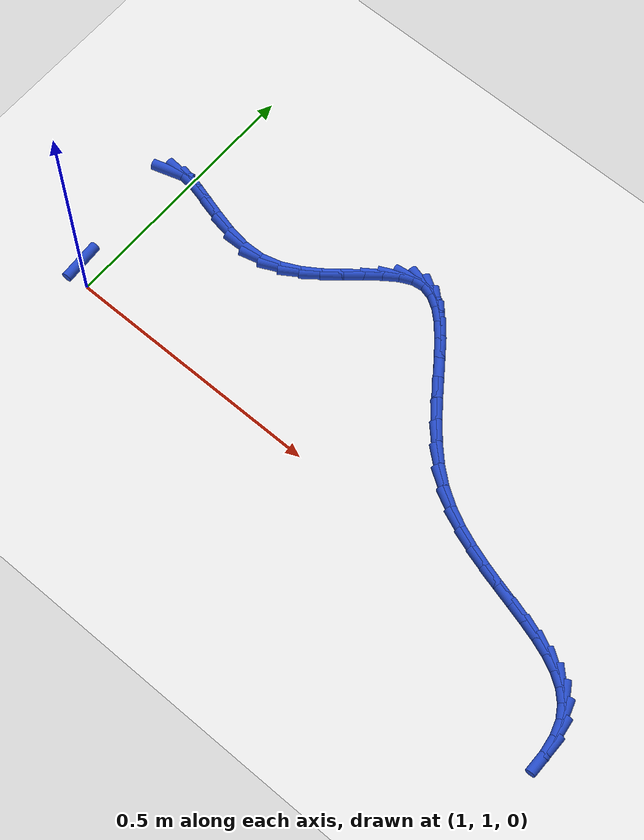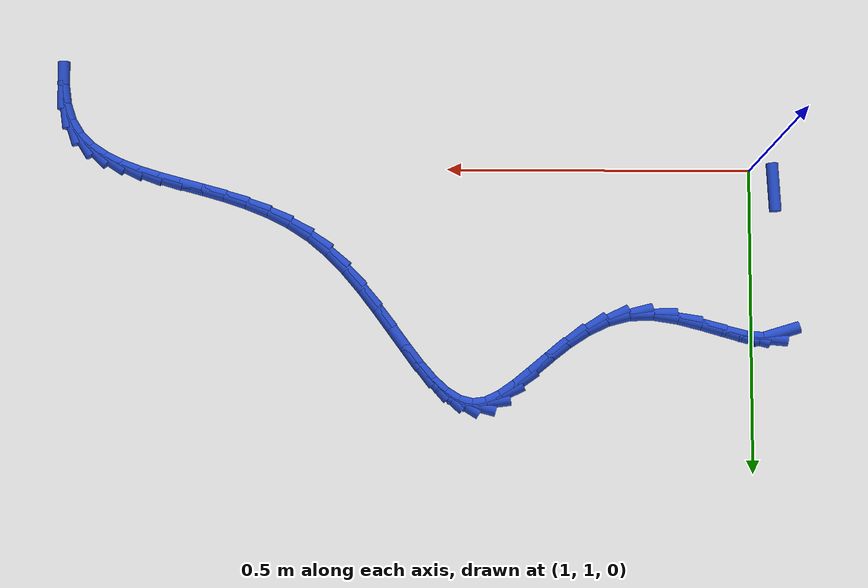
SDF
<sdf version="1.6">
 <world name="default">
  <model name="ground_plane">
   <static>1</static>
   <link name="link">
    <collision name="collision">
     <geometry><plane><normal>0 0 1</normal><size>100 100</size></plane></geometry>
     <surface><friction><ode><mu>100</mu><mu2>50</mu2></ode></friction></surface>
    </collision>
    <visual name="visual">
     <cast_shadows>0</cast_shadows>
     <geometry><plane><normal>0 0 1</normal><size>100 100</size></plane></geometry>
     <material>
      <script><uri>file://media/materials/scripts/gazebo.material</uri><name>Gazebo/WhiteGlow</name></script>
     </material>
    </visual>
   </link>
  </model>
  <model name="line">
   <link name="link_58">
    <pose>0.9605928136043744 1.027902961192226 0.01 0 1.57 -1.5136430494704942</pose>
    <collision name="collision">
     <geometry><cylinder><radius>0.01</radius><length>0.08</length></cylinder></geometry>
    </collision>
    <visual name="visual">
     <material>
      <script><name>Gazebo/Blue</name><uri>file://media/materials/scripts/gazebo.material</uri></script>
     </material>
     <geometry><cylinder><radius>0.01</radius><length>0.08</length></cylinder></geometry>
    </visual>
   </link>
   <link name="link_65">
    <pose>0.9603927671434382 1.271855143567124 0.01 0 1.57 0.2981875370096735</pose>
    <collision name="collision">
     <geometry><cylinder><radius>0.01</radius><length>0.08</length></cylinder></geometry>
    </collision>
    <visual name="visual">
     <material>
      <script><name>Gazebo/Blue</name><uri>file://media/materials/scripts/gazebo.material</uri></script>
     </material>
     <geometry><cylinder><radius>0.01</radius><length>0.08</length></cylinder></geometry>
    </visual>
   </link>
   <link name="link_66">
    <pose>0.9814231925790543 1.2783188756263189 0.01 0 1.57 -0.08738735991662325</pose>
    <collision name="collision">
     <geometry><cylinder><radius>0.01</radius><length>0.08</length></cylinder></geometry>
    </collision>
    <visual name="visual">
     <material>
      <script><name>Gazebo/Blue</name><uri>file://media/materials/scripts/gazebo.material</uri></script>
     </material>
     <geometry><cylinder><radius>0.01</radius><length>0.08</length></cylinder></geometry>
    </visual>
   </link>
   <link name="link_67">
    <pose>1.0097233587953658 1.2758394842674308 0.01 0 1.57 -0.23805824030081318</pose>
    <collision name="collision">
     <geometry><cylinder><radius>0.01</radius><length>0.08</length></cylinder></geometry>
    </collision>
    <visual name="visual">
     <material>
      <script><name>Gazebo/Blue</name><uri>file://media/materials/scripts/gazebo.material</uri></script>
     </material>
     <geometry><cylinder><radius>0.01</radius><length>0.08</length></cylinder></geometry>
    </visual>
   </link>
   <link name="link_68">
    <pose>1.0435710092084798 1.2676260258343406 0.01 0 1.57 -0.27768086560515354</pose>
    <collision name="collision">
     <geometry><cylinder><radius>0.01</radius><length>0.08</length></cylinder></geometry>
    </collision>
    <visual name="visual">
     <material>
      <script><name>Gazebo/Blue</name><uri>file://media/materials/scripts/gazebo.material</uri></script>
     </material>
     <geometry><cylinder><radius>0.01</radius><length>0.08</length></cylinder></geometry>
    </visual>
   </link>
   <link name="link_69">
    <pose>1.0812438872345045 1.2568875566709294 0.01 0 1.57 -0.24759068626663827</pose>
    <collision name="collision">
     <geometry><cylinder><radius>0.01</radius><length>0.08</length></cylinder></geometry>
    </collision>
    <visual name="visual">
     <material>
      <script><name>Gazebo/Blue</name><uri>file://media/materials/scripts/gazebo.material</uri></script>
     </material>
     <geometry><cylinder><radius>0.01</radius><length>0.08</length></cylinder></geometry>
    </visual>
   </link>
   <link name="link_70">
    <pose>1.1210197362895482 1.2468331331210767 0.01 0 1.57 -0.152245205504104</pose>
    <collision name="collision">
     <geometry><cylinder><radius>0.01</radius><length>0.08</length></cylinder></geometry>
    </collision>
    <visual name="visual">
     <material>
      <script><name>Gazebo/Blue</name><uri>file://media/materials/scripts/gazebo.material</uri></script>
     </material>
     <geometry><cylinder><radius>0.01</radius><length>0.08</length></cylinder></geometry>
    </visual>
   </link>
   <link name="link_71">
    <pose>1.1611762997897181 1.2406718115286641 0.01 0 1.57 0.023915282053574946</pose>
    <collision name="collision">
     <geometry><cylinder><radius>0.01</radius><length>0.08</length></cylinder></geometry>
    </collision>
    <visual name="visual">
     <material>
      <script><name>Gazebo/Blue</name><uri>file://media/materials/scripts/gazebo.material</uri></script>
     </material>
     <geometry><cylinder><radius>0.01</radius><length>0.08</length></cylinder></geometry>
    </visual>
   </link>
   <link name="link_72">
    <pose>1.199995699316528 1.24160036545018 0.01 0 1.57 0.2569513364190894</pose>
    <collision name="collision">
     <geometry><cylinder><radius>0.01</radius><length>0.08</length></cylinder></geometry>
    </collision>
    <visual name="visual">
     <material>
      <script><name>Gazebo/Blue</name><uri>file://media/materials/scripts/gazebo.material</uri></script>
     </material>
     <geometry><cylinder><radius>0.01</radius><length>0.08</length></cylinder></geometry>
    </visual>
   </link>
   <link name="link_73">
    <pose>1.2363525062563927 1.2511534715775552 0.01 0 1.57 0.4495954709208607</pose>
    <collision name="collision">
     <geometry><cylinder><radius>0.01</radius><length>0.08</length></cylinder></geometry>
    </collision>
    <visual name="visual">
     <material>
      <script><name>Gazebo/Blue</name><uri>file://media/materials/scripts/gazebo.material</uri></script>
     </material>
     <geometry><cylinder><radius>0.01</radius><length>0.08</length></cylinder></geometry>
    </visual>
   </link>
   <link name="link_74">
    <pose>1.2703072799655477 1.2675385595182629 0.01 0 1.57 0.5849057528706614</pose>
    <collision name="collision">
     <geometry><cylinder><radius>0.01</radius><length>0.08</length></cylinder></geometry>
    </collision>
    <visual name="visual">
     <material>
      <script><name>Gazebo/Blue</name><uri>file://media/materials/scripts/gazebo.material</uri></script>
     </material>
     <geometry><cylinder><radius>0.01</radius><length>0.08</length></cylinder></geometry>
    </visual>
   </link>
   <link name="link_75">
    <pose>1.3020619107705766 1.2885665598671405 0.01 0 1.57 0.668081648597988</pose>
    <collision name="collision">
     <geometry><cylinder><radius>0.01</radius><length>0.08</length></cylinder></geometry>
    </collision>
    <visual name="visual">
     <material>
      <script><name>Gazebo/Blue</name><uri>file://media/materials/scripts/gazebo.material</uri></script>
     </material>
     <geometry><cylinder><radius>0.01</radius><length>0.08</length></cylinder></geometry>
    </visual>
   </link>
   <link name="link_76">
    <pose>1.3318182889980608 1.3120484032190252 0.01 0 1.57 0.7040911818214479</pose>
    <collision name="collision">
     <geometry><cylinder><radius>0.01</radius><length>0.08</length></cylinder></geometry>
    </collision>
    <visual name="visual">
     <material>
      <script><name>Gazebo/Blue</name><uri>file://media/materials/scripts/gazebo.material</uri></script>
     </material>
     <geometry><cylinder><radius>0.01</radius><length>0.08</length></cylinder></geometry>
    </visual>
   </link>
   <link name="link_77">
    <pose>1.3597783049745833 1.335795020168755 0.01 0 1.57 0.6913945657915324</pose>
    <collision name="collision">
     <geometry><cylinder><radius>0.01</radius><length>0.08</length></cylinder></geometry>
    </collision>
    <visual name="visual">
     <material>
      <script><name>Gazebo/Blue</name><uri>file://media/materials/scripts/gazebo.material</uri></script>
     </material>
     <geometry><cylinder><radius>0.01</radius><length>0.08</length></cylinder></geometry>
    </visual>
   </link>
   <link name="link_78">
    <pose>1.3861438490267284 1.357617341311168 0.01 0 1.57 0.6168240129013752</pose>
    <collision name="collision">
     <geometry><cylinder><radius>0.01</radius><length>0.08</length></cylinder></geometry>
    </collision>
    <visual name="visual">
     <material>
      <script><name>Gazebo/Blue</name><uri>file://media/materials/scripts/gazebo.material</uri></script>
     </material>
     <geometry><cylinder><radius>0.01</radius><length>0.08</length></cylinder></geometry>
    </visual>
   </link>
   <link name="link_79">
    <pose>1.4111168114810768 1.3753262972411013 0.01 0 1.57 0.44721342519376794</pose>
    <collision name="collision">
     <geometry><cylinder><radius>0.01</radius><length>0.08</length></cylinder></geometry>
    </collision>
    <visual name="visual">
     <material>
      <script><name>Gazebo/Blue</name><uri>file://media/materials/scripts/gazebo.material</uri></script>
     </material>
     <geometry><cylinder><radius>0.01</radius><length>0.08</length></cylinder></geometry>
    </visual>
   </link>
   <link name="link_80">
    <pose>1.4348990826642116 1.3867328185533927 0.01 0 1.57 0.1313487871875756</pose>
    <collision name="collision">
     <geometry><cylinder><radius>0.01</radius><length>0.08</length></cylinder></geometry>
    </collision>
    <visual name="visual">
     <material>
      <script><name>Gazebo/Blue</name><uri>file://media/materials/scripts/gazebo.material</uri></script>
     </material>
     <geometry><cylinder><radius>0.01</radius><length>0.08</length></cylinder></geometry>
    </visual>
   </link>
   <link name="link_81">
    <pose>1.4576952057606638 1.3897444007384727 0.01 0 1.57 -0.2539176233739792</pose>
    <collision name="collision">
     <geometry><cylinder><radius>0.01</radius><length>0.08</length></cylinder></geometry>
    </collision>
    <visual name="visual">
     <material>
      <script><name>Gazebo/Blue</name><uri>file://media/materials/scripts/gazebo.material</uri></script>
     </material>
     <geometry><cylinder><radius>0.01</radius><length>0.08</length></cylinder></geometry>
    </visual>
   </link>
   <link name="link_82">
    <pose>1.4797578057700844 1.38401873305889 0.01 0 1.57 -0.550837278977034</pose>
    <collision name="collision">
     <geometry><cylinder><radius>0.01</radius><length>0.08</length></cylinder></geometry>
    </collision>
    <visual name="visual">
     <material>
      <script><name>Gazebo/Blue</name><uri>file://media/materials/scripts/gazebo.material</uri></script>
     </material>
     <geometry><cylinder><radius>0.01</radius><length>0.08</length></cylinder></geometry>
    </visual>
   </link>
   <link name="link_83">
    <pose>1.5013813425317146 1.3707363065998395 0.01 0 1.57 -0.7398583230059056</pose>
    <collision name="collision">
     <geometry><cylinder><radius>0.01</radius><length>0.08</length></cylinder></geometry>
    </collision>
    <visual name="visual">
     <material>
      <script><name>Gazebo/Blue</name><uri>file://media/materials/scripts/gazebo.material</uri></script>
     </material>
     <geometry><cylinder><radius>0.01</radius><length>0.08</length></cylinder></geometry>
    </visual>
   </link>
   <link name="link_84">
    <pose>1.5228616717564858 1.351128422631925 0.01 0 1.57 -0.8515379101739224</pose>
    <collision name="collision">
     <geometry><cylinder><radius>0.01</radius><length>0.08</length></cylinder></geometry>
    </collision>
    <visual name="visual">
     <material>
      <script><name>Gazebo/Blue</name><uri>file://media/materials/scripts/gazebo.material</uri></script>
     </material>
     <geometry><cylinder><radius>0.01</radius><length>0.08</length></cylinder></geometry>
    </visual>
   </link>
   <link name="link_85">
    <pose>1.5444946491553297 1.326426382425752 0.01 0 1.57 -0.9127190706280115</pose>
    <collision name="collision">
     <geometry><cylinder><radius>0.01</radius><length>0.08</length></cylinder></geometry>
    </collision>
    <visual name="visual">
     <material>
      <script><name>Gazebo/Blue</name><uri>file://media/materials/scripts/gazebo.material</uri></script>
     </material>
     <geometry><cylinder><radius>0.01</radius><length>0.08</length></cylinder></geometry>
    </visual>
   </link>
   <link name="link_86">
    <pose>1.5665761304391796 1.2978614872519267 0.01 0 1.57 -0.9391230005026457</pose>
    <collision name="collision">
     <geometry><cylinder><radius>0.01</radius><length>0.08</length></cylinder></geometry>
    </collision>
    <visual name="visual">
     <material>
      <script><name>Gazebo/Blue</name><uri>file://media/materials/scripts/gazebo.material</uri></script>
     </material>
     <geometry><cylinder><radius>0.01</radius><length>0.08</length></cylinder></geometry>
    </visual>
   </link>
   <link name="link_87">
    <pose>1.5894019713189653 1.2666650383810534 0.01 0 1.57 -0.9388098188564131</pose>
    <collision name="collision">
     <geometry><cylinder><radius>0.01</radius><length>0.08</length></cylinder></geometry>
    </collision>
    <visual name="visual">
     <material>
      <script><name>Gazebo/Blue</name><uri>file://media/materials/scripts/gazebo.material</uri></script>
     </material>
     <geometry><cylinder><radius>0.01</radius><length>0.08</length></cylinder></geometry>
    </visual>
   </link>
   <link name="link_88">
    <pose>1.6132680275056204 1.2340683370837373 0.01 0 1.57 -0.9151432845484581</pose>
    <collision name="collision">
     <geometry><cylinder><radius>0.01</radius><length>0.08</length></cylinder></geometry>
    </collision>
    <visual name="visual">
     <material>
      <script><name>Gazebo/Blue</name><uri>file://media/materials/scripts/gazebo.material</uri></script>
     </material>
     <geometry><cylinder><radius>0.01</radius><length>0.08</length></cylinder></geometry>
    </visual>
   </link>
   <link name="link_89">
    <pose>1.6384701547100755 1.201302684630584 0.01 0 1.57 -0.8683890025628968</pose>
    <collision name="collision">
     <geometry><cylinder><radius>0.01</radius><length>0.08</length></cylinder></geometry>
    </collision>
    <visual name="visual">
     <material>
      <script><name>Gazebo/Blue</name><uri>file://media/materials/scripts/gazebo.material</uri></script>
     </material>
     <geometry><cylinder><radius>0.01</radius><length>0.08</length></cylinder></geometry>
    </visual>
   </link>
   <link name="link_90">
    <pose>1.665304208643264 1.1695993822921984 0.01 0 1.57 -0.796533993542609</pose>
    <collision name="collision">
     <geometry><cylinder><radius>0.01</radius><length>0.08</length></cylinder></geometry>
    </collision>
    <visual name="visual">
     <material>
      <script><name>Gazebo/Blue</name><uri>file://media/materials/scripts/gazebo.material</uri></script>
     </material>
     <geometry><cylinder><radius>0.01</radius><length>0.08</length></cylinder></geometry>
    </visual>
   </link>
   <link name="link_91">
    <pose>1.6940660450161174 1.1401897313391858 0.01 0 1.57 -0.6959529060242613</pose>
    <collision name="collision">
     <geometry><cylinder><radius>0.01</radius><length>0.08</length></cylinder></geometry>
    </collision>
    <visual name="visual">
     <material>
      <script><name>Gazebo/Blue</name><uri>file://media/materials/scripts/gazebo.material</uri></script>
     </material>
     <geometry><cylinder><radius>0.01</radius><length>0.08</length></cylinder></geometry>
    </visual>
   </link>
   <link name="link_92">
    <pose>1.725051397022078 1.1143047683632985 0.01 0 1.57 -0.5743871195583998</pose>
    <collision name="collision">
     <geometry><cylinder><radius>0.01</radius><length>0.08</length></cylinder></geometry>
    </collision>
    <visual name="visual">
     <material>
      <script><name>Gazebo/Blue</name><uri>file://media/materials/scripts/gazebo.material</uri></script>
     </material>
     <geometry><cylinder><radius>0.01</radius><length>0.08</length></cylinder></geometry>
    </visual>
   </link>
   <link name="link_93">
    <pose>1.7583586269998928 1.0927491427350038 0.01 0 1.57 -0.4670486923551641</pose>
    <collision name="collision">
     <geometry><cylinder><radius>0.01</radius><length>0.08</length></cylinder></geometry>
    </collision>
    <visual name="visual">
     <material>
      <script><name>Gazebo/Blue</name><uri>file://media/materials/scripts/gazebo.material</uri></script>
     </material>
     <geometry><cylinder><radius>0.01</radius><length>0.08</length></cylinder></geometry>
    </visual>
   </link>
   <link name="link_94">
    <pose>1.7934877900977642 1.0750349596908273 0.01 0 1.57 -0.38215044154634376</pose>
    <collision name="collision">
     <geometry><cylinder><radius>0.01</radius><length>0.08</length></cylinder></geometry>
    </collision>
    <visual name="visual">
     <material>
      <script><name>Gazebo/Blue</name><uri>file://media/materials/scripts/gazebo.material</uri></script>
     </material>
     <geometry><cylinder><radius>0.01</radius><length>0.08</length></cylinder></geometry>
    </visual>
   </link>
   <link name="link_95">
    <pose>1.829825998395722 1.060430329572127 0.01 0 1.57 -0.31969036962149705</pose>
    <collision name="collision">
     <geometry><cylinder><radius>0.01</radius><length>0.08</length></cylinder></geometry>
    </collision>
    <visual name="visual">
     <material>
      <script><name>Gazebo/Blue</name><uri>file://media/materials/scripts/gazebo.material</uri></script>
     </material>
     <geometry><cylinder><radius>0.01</radius><length>0.08</length></cylinder></geometry>
    </visual>
   </link>
   <link name="link_96">
    <pose>1.8667603639737989 1.0482033627202627 0.01 0 1.57 -0.27913333063416507</pose>
    <collision name="collision">
     <geometry><cylinder><radius>0.01</radius><length>0.08</length></cylinder></geometry>
    </collision>
    <visual name="visual">
     <material>
      <script><name>Gazebo/Blue</name><uri>file://media/materials/scripts/gazebo.material</uri></script>
     </material>
     <geometry><cylinder><radius>0.01</radius><length>0.08</length></cylinder></geometry>
    </visual>
   </link>
   <link name="link_97">
    <pose>1.903677998912025 1.0376221694765932 0.01 0 1.57 -0.26035808871404376</pose>
    <collision name="collision">
     <geometry><cylinder><radius>0.01</radius><length>0.08</length></cylinder></geometry>
    </collision>
    <visual name="visual">
     <material>
      <script><name>Gazebo/Blue</name><uri>file://media/materials/scripts/gazebo.material</uri></script>
     </material>
     <geometry><cylinder><radius>0.01</radius><length>0.08</length></cylinder></geometry>
    </visual>
   </link>
   <link name="link_98">
    <pose>1.939966015290431 1.0279548601824766 0.01 0 1.57 -0.2643241568048367</pose>
    <collision name="collision">
     <geometry><cylinder><radius>0.01</radius><length>0.08</length></cylinder></geometry>
    </collision>
    <visual name="visual">
     <material>
      <script><name>Gazebo/Blue</name><uri>file://media/materials/scripts/gazebo.material</uri></script>
     </material>
     <geometry><cylinder><radius>0.01</radius><length>0.08</length></cylinder></geometry>
    </visual>
   </link>
   <link name="link_99">
    <pose>1.9750115251890494 1.0184695451792722 0.01 0 1.57 -0.2936163009498964</pose>
    <collision name="collision">
     <geometry><cylinder><radius>0.01</radius><length>0.08</length></cylinder></geometry>
    </collision>
    <visual name="visual">
     <material>
      <script><name>Gazebo/Blue</name><uri>file://media/materials/scripts/gazebo.material</uri></script>
     </material>
     <geometry><cylinder><radius>0.01</radius><length>0.08</length></cylinder></geometry>
    </visual>
   </link>
   <link name="link_100">
    <pose>2.008201640687911 1.00843433480834 0.01 0 1.57 -0.3529452555599172</pose>
    <collision name="collision">
     <geometry><cylinder><radius>0.01</radius><length>0.08</length></cylinder></geometry>
    </collision>
    <visual name="visual">
     <material>
      <script><name>Gazebo/Blue</name><uri>file://media/materials/scripts/gazebo.material</uri></script>
     </material>
     <geometry><cylinder><radius>0.01</radius><length>0.08</length></cylinder></geometry>
    </visual>
   </link>
   <link name="link_101">
    <pose>2.0389234738670456 0.9971173394110376 0.01 0 1.57 -0.44937523193420204</pose>
    <collision name="collision">
     <geometry><cylinder><radius>0.01</radius><length>0.08</length></cylinder></geometry>
    </collision>
    <visual name="visual">
     <material>
      <script><name>Gazebo/Blue</name><uri>file://media/materials/scripts/gazebo.material</uri></script>
     </material>
     <geometry><cylinder><radius>0.01</radius><length>0.08</length></cylinder></geometry>
    </visual>
   </link>
   <link name="link_102">
    <pose>2.066564136806486 0.9837866693287243 0.01 0 1.57 -0.591228732872911</pose>
    <collision name="collision">
     <geometry><cylinder><radius>0.01</radius><length>0.08</length></cylinder></geometry>
    </collision>
    <visual name="visual">
     <material>
      <script><name>Gazebo/Blue</name><uri>file://media/materials/scripts/gazebo.material</uri></script>
     </material>
     <geometry><cylinder><radius>0.01</radius><length>0.08</length></cylinder></geometry>
    </visual>
   </link>
   <link name="link_103">
    <pose>2.0905107415862623 0.9677104349027592 0.01 0 1.57 -0.7832046754637693</pose>
    <collision name="collision">
     <geometry><cylinder><radius>0.01</radius><length>0.08</length></cylinder></geometry>
    </collision>
    <visual name="visual">
     <material>
      <script><name>Gazebo/Blue</name><uri>file://media/materials/scripts/gazebo.material</uri></script>
     </material>
     <geometry><cylinder><radius>0.01</radius><length>0.08</length></cylinder></geometry>
    </visual>
   </link>
   <link name="link_104">
    <pose>2.1101504002864058 0.9481567464745012 0.01 0 1.57 -1.0162036236802128</pose>
    <collision name="collision">
     <geometry><cylinder><radius>0.01</radius><length>0.08</length></cylinder></geometry>
    </collision>
    <visual name="visual">
     <material>
      <script><name>Gazebo/Blue</name><uri>file://media/materials/scripts/gazebo.material</uri></script>
     </material>
     <geometry><cylinder><radius>0.01</radius><length>0.08</length></cylinder></geometry>
    </visual>
   </link>
   <link name="link_105">
    <pose>2.1248702249869478 0.9243937143853092 0.01 0 1.57 -1.254827424917512</pose>
    <collision name="collision">
     <geometry><cylinder><radius>0.01</radius><length>0.08</length></cylinder></geometry>
    </collision>
    <visual name="visual">
     <material>
      <script><name>Gazebo/Blue</name><uri>file://media/materials/scripts/gazebo.material</uri></script>
     </material>
     <geometry><cylinder><radius>0.01</radius><length>0.08</length></cylinder></geometry>
    </visual>
   </link>
   <link name="link_106">
    <pose>2.1341934104373816 0.8958756030727276 0.01 0 1.57 -1.4351577111673934</pose>
    <collision name="collision">
     <geometry><cylinder><radius>0.01</radius><length>0.08</length></cylinder></geometry>
    </collision>
    <visual name="visual">
     <material>
      <script><name>Gazebo/Blue</name><uri>file://media/materials/scripts/gazebo.material</uri></script>
     </material>
     <geometry><cylinder><radius>0.01</radius><length>0.08</length></cylinder></geometry>
    </visual>
   </link>
   <link name="link_107">
    <pose>2.1386255041854394 0.8634004851022077 0.01 0 1.57 -1.557161283128474</pose>
    <collision name="collision">
     <geometry><cylinder><radius>0.01</radius><length>0.08</length></cylinder></geometry>
    </collision>
    <visual name="visual">
     <material>
      <script><name>Gazebo/Blue</name><uri>file://media/materials/scripts/gazebo.material</uri></script>
     </material>
     <geometry><cylinder><radius>0.01</radius><length>0.08</length></cylinder></geometry>
    </visual>
   </link>
  </model>
 </world>
</sdf>
